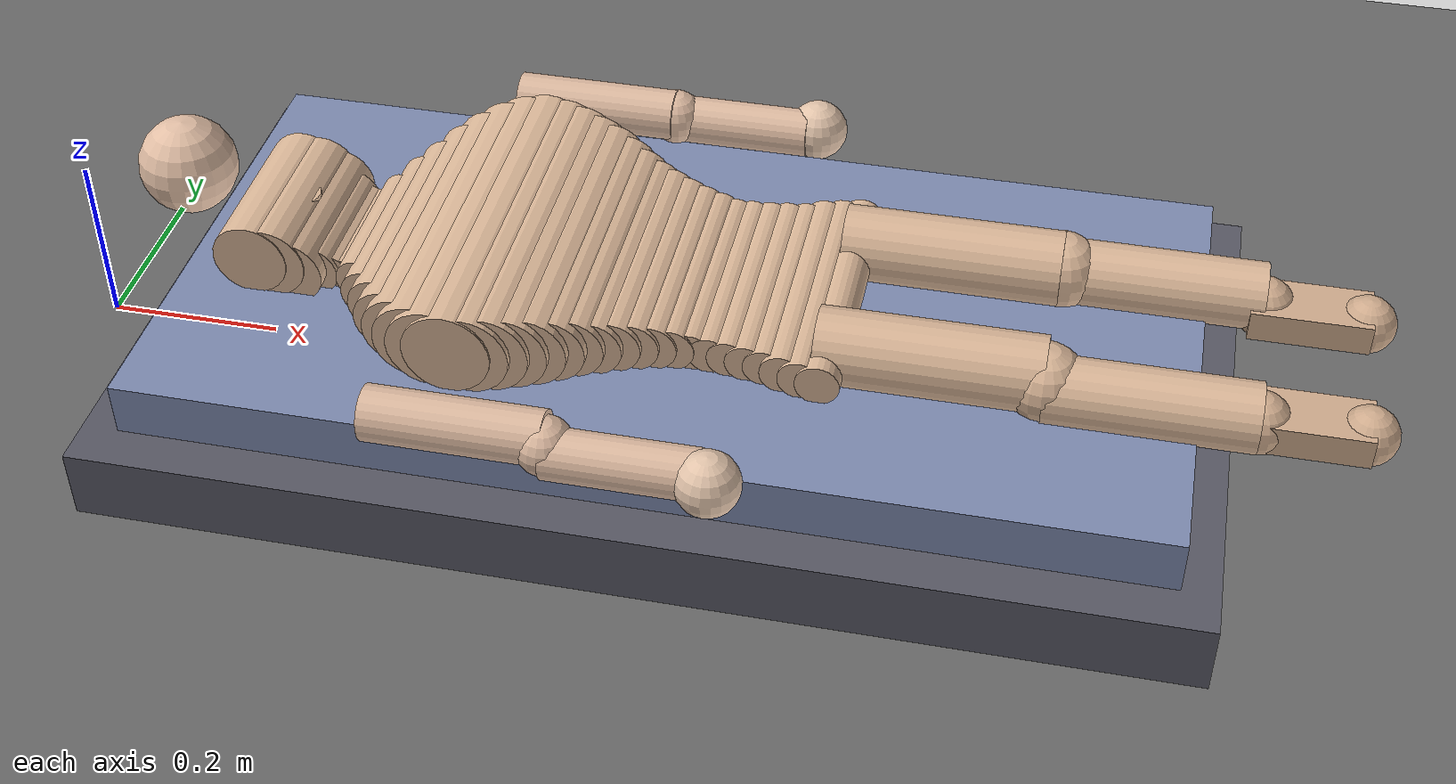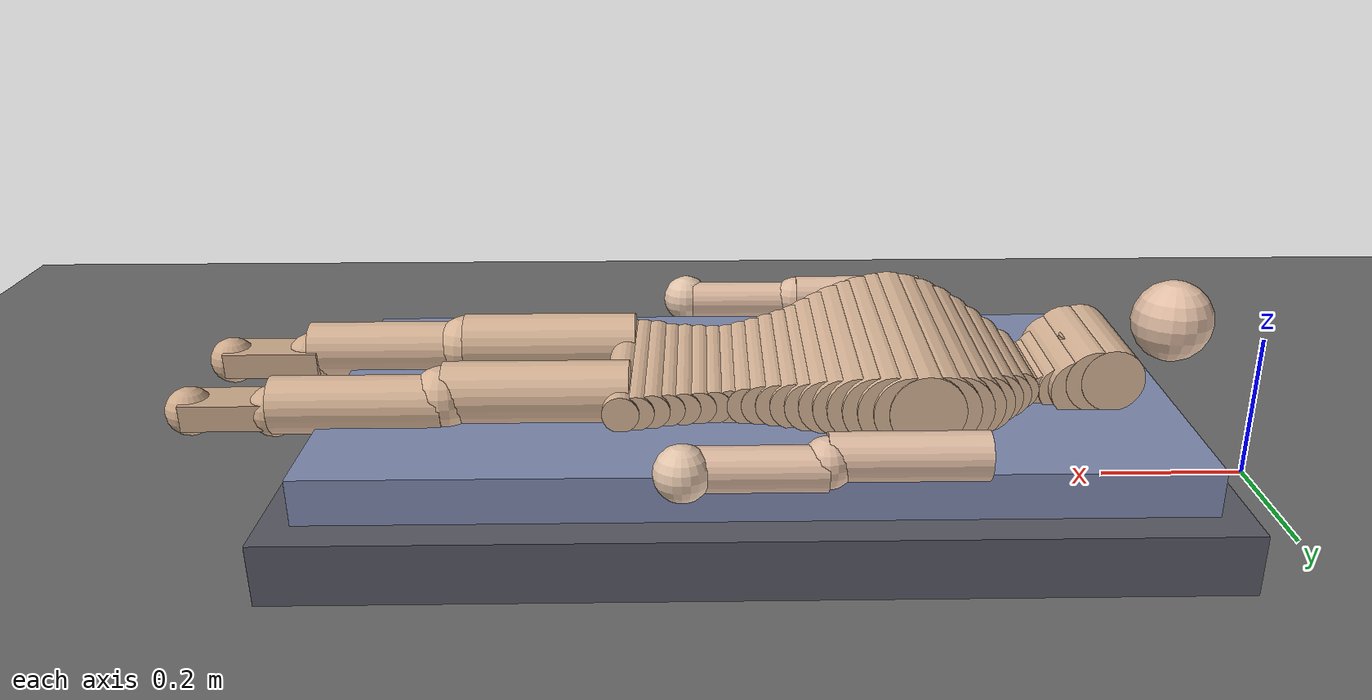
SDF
<?xml version="1.0" ?>
<sdf version="1.6">
  <world name="massage_world">
    <gravity>0 0 -9.81</gravity>

    <physics name="stable_ode" default="true" type="ode">
      <max_step_size>0.001</max_step_size>
      <real_time_factor>1.0</real_time_factor>
      <real_time_update_rate>1000</real_time_update_rate>
      <ode>
        <solver>
          <type>quick</type>
          <iters>80</iters>
          <sor>1.2</sor>
        </solver>
        <constraints>
          <cfm>0.00001</cfm>
          <erp>0.2</erp>
          <contact_max_correcting_vel>0.5</contact_max_correcting_vel>
          <contact_surface_layer>0.002</contact_surface_layer>
        </constraints>
      </ode>
    </physics>

    <gui fullscreen="1">
      <camera name="user_camera">
        <pose>0.70 -1.50 1.20 0 0.75 4.80</pose>
        <view_controller>orbit</view_controller>
      </camera>
    </gui>

    <!-- 地面 -->
    <model name="ground_plane">
      <static>true</static>
      <link name="link">
        <collision name="collision">
          <geometry>
            <plane><normal>0 0 1</normal><size>4 4</size></plane>
          </geometry>
        </collision>
        <visual name="visual">
          <geometry>
            <plane><normal>0 0 1</normal><size>4 4</size></plane>
          </geometry>
          <material>
            <ambient>0.42 0.42 0.42 1</ambient>
            <diffuse>0.42 0.42 0.42 1</diffuse>
          </material>
        </visual>
      </link>
    </model>

    <!-- 光照 -->
    <light name="sun" type="directional">
      <cast_shadows>true</cast_shadows>
      <pose>0 0 5 0 0 0</pose>
      <diffuse>0.8 0.8 0.8 1</diffuse>
      <specular>0.2 0.2 0.2 1</specular>
      <attenuation>
        <range>1000</range>
        <constant>0.9</constant>
        <linear>0.01</linear>
        <quadratic>0.001</quadratic>
      </attenuation>
      <direction>-0.5 0.1 -0.9</direction>
    </light>

    <!-- 按摩床 (center x=0.70, y=0) — 两个 Box: 床框 + 床垫 -->
    <model name="massage_bed">
      <static>true</static>
      <pose>0 0 0 0 0 0</pose>

      <link name="bed_frame">
        <collision name="frame_collision">
          <pose>0.70 0 0.04 0 0 0</pose>
          <geometry><box><size>1.20 0.66 0.08</size></box></geometry>
        </collision>
        <visual name="frame_visual">
          <pose>0.70 0 0.04 0 0 0</pose>
          <geometry><box><size>1.20 0.66 0.08</size></box></geometry>
          <material>
            <ambient>0.35 0.35 0.40 1</ambient>
            <diffuse>0.35 0.35 0.40 1</diffuse>
          </material>
        </visual>
      </link>

      <link name="mattress">
        <pose>0.70 0 0.11 0 0 0</pose>
        <collision name="mattress_collision">
          <geometry><box><size>1.12 0.56 0.06</size></box></geometry>
        </collision>
        <visual name="mattress_visual">
          <geometry><box><size>1.12 0.56 0.06</size></box></geometry>
          <material>
            <ambient>0.50 0.55 0.70 1</ambient>
            <diffuse>0.50 0.55 0.70 1</diffuse>
          </material>
        </visual>
      </link>
    </model>

    <!-- 人体模型 — Catmull-Rom 样条平滑背部曲面 (33根Y轴圆柱)    -->
    <!-- 间距2cm, 半径=thick*0.55 — 相邻圆柱重叠形成连续曲面       -->
    <!-- 所有四肢 z ≥ 0.18 (床垫顶0.14 + 4cm安全间距)              -->
    <!-- Z→Y: 绕X旋转90° → roll=1.5708 rad                        -->
    <model name="human_body">
      <static>true</static>

      <!-- ── 人体轮廓躯干 (12段Catmull-Rom→33采样, 2cm间距) ── -->
      <!-- 设计原则: 肩部明显隆起(z峰=0.187,r=0.048), 腰部明显收窄(L=0.246) -->
      <!-- z_center = z_surface - radius: 圆柱顶面≈体表按压点              -->
      <!-- length = 2*half_w: Y向体宽, 肩部最宽0.415m, 腰部最窄0.246m      -->
      <link name="back_00"><pose>0.230 0 0.180 1.5708 0 0</pose>
        <collision name="c"><geometry><cylinder><radius>0.042</radius><length>0.185</length></cylinder></geometry></collision>
        <visual name="v"><geometry><cylinder><radius>0.042</radius><length>0.185</length></cylinder></geometry>
          <material><ambient>0.86 0.72 0.60 1</ambient><diffuse>0.86 0.72 0.60 1</diffuse></material></visual>
      </link>
      <link name="back_01"><pose>0.250 0 0.178 1.5708 0 0</pose>
        <collision name="c"><geometry><cylinder><radius>0.042</radius><length>0.183</length></cylinder></geometry></collision>
        <visual name="v"><geometry><cylinder><radius>0.042</radius><length>0.183</length></cylinder></geometry>
          <material><ambient>0.86 0.72 0.60 1</ambient><diffuse>0.86 0.72 0.60 1</diffuse></material></visual>
      </link>
      <link name="back_02"><pose>0.270 0 0.167 1.5708 0 0</pose>
        <collision name="c"><geometry><cylinder><radius>0.040</radius><length>0.180</length></cylinder></geometry></collision>
        <visual name="v"><geometry><cylinder><radius>0.040</radius><length>0.180</length></cylinder></geometry>
          <material><ambient>0.86 0.72 0.60 1</ambient><diffuse>0.86 0.72 0.60 1</diffuse></material></visual>
      </link>
      <link name="back_03"><pose>0.290 0 0.160 1.5708 0 0</pose>
        <collision name="c"><geometry><cylinder><radius>0.032</radius><length>0.148</length></cylinder></geometry></collision>
        <visual name="v"><geometry><cylinder><radius>0.032</radius><length>0.148</length></cylinder></geometry>
          <material><ambient>0.86 0.72 0.60 1</ambient><diffuse>0.86 0.72 0.60 1</diffuse></material></visual>
      </link>
      <link name="back_04"><pose>0.310 0 0.153 1.5708 0 0</pose>
        <collision name="c"><geometry><cylinder><radius>0.026</radius><length>0.137</length></cylinder></geometry></collision>
        <visual name="v"><geometry><cylinder><radius>0.026</radius><length>0.137</length></cylinder></geometry>
          <material><ambient>0.86 0.72 0.60 1</ambient><diffuse>0.86 0.72 0.60 1</diffuse></material></visual>
      </link>
      <link name="back_05"><pose>0.330 0 0.152 1.5708 0 0</pose>
        <collision name="c"><geometry><cylinder><radius>0.024</radius><length>0.135</length></cylinder></geometry></collision>
        <visual name="v"><geometry><cylinder><radius>0.024</radius><length>0.135</length></cylinder></geometry>
          <material><ambient>0.86 0.72 0.60 1</ambient><diffuse>0.86 0.72 0.60 1</diffuse></material></visual>
      </link>
      <link name="back_06"><pose>0.350 0 0.163 1.5708 0 0</pose>
        <collision name="c"><geometry><cylinder><radius>0.026</radius><length>0.166</length></cylinder></geometry></collision>
        <visual name="v"><geometry><cylinder><radius>0.026</radius><length>0.166</length></cylinder></geometry>
          <material><ambient>0.86 0.72 0.60 1</ambient><diffuse>0.86 0.72 0.60 1</diffuse></material></visual>
      </link>
      <link name="back_07"><pose>0.370 0 0.168 1.5708 0 0</pose>
        <collision name="c"><geometry><cylinder><radius>0.030</radius><length>0.220</length></cylinder></geometry></collision>
        <visual name="v"><geometry><cylinder><radius>0.030</radius><length>0.220</length></cylinder></geometry>
          <material><ambient>0.86 0.72 0.60 1</ambient><diffuse>0.86 0.72 0.60 1</diffuse></material></visual>
      </link>
      <link name="back_08"><pose>0.390 0 0.173 1.5708 0 0</pose>
        <collision name="c"><geometry><cylinder><radius>0.034</radius><length>0.265</length></cylinder></geometry></collision>
        <visual name="v"><geometry><cylinder><radius>0.034</radius><length>0.265</length></cylinder></geometry>
          <material><ambient>0.86 0.72 0.60 1</ambient><diffuse>0.86 0.72 0.60 1</diffuse></material></visual>
      </link>
      <link name="back_09"><pose>0.410 0 0.177 1.5708 0 0</pose>
        <collision name="c"><geometry><cylinder><radius>0.038</radius><length>0.316</length></cylinder></geometry></collision>
        <visual name="v"><geometry><cylinder><radius>0.038</radius><length>0.316</length></cylinder></geometry>
          <material><ambient>0.86 0.72 0.60 1</ambient><diffuse>0.86 0.72 0.60 1</diffuse></material></visual>
      </link>
      <link name="back_10"><pose>0.430 0 0.181 1.5708 0 0</pose>
        <collision name="c"><geometry><cylinder><radius>0.042</radius><length>0.354</length></cylinder></geometry></collision>
        <visual name="v"><geometry><cylinder><radius>0.042</radius><length>0.354</length></cylinder></geometry>
          <material><ambient>0.86 0.72 0.60 1</ambient><diffuse>0.86 0.72 0.60 1</diffuse></material></visual>
      </link>
      <link name="back_11"><pose>0.450 0 0.184 1.5708 0 0</pose>
        <collision name="c"><geometry><cylinder><radius>0.045</radius><length>0.385</length></cylinder></geometry></collision>
        <visual name="v"><geometry><cylinder><radius>0.045</radius><length>0.385</length></cylinder></geometry>
          <material><ambient>0.86 0.72 0.60 1</ambient><diffuse>0.86 0.72 0.60 1</diffuse></material></visual>
      </link>
      <link name="back_12"><pose>0.470 0 0.186 1.5708 0 0</pose>
        <collision name="c"><geometry><cylinder><radius>0.047</radius><length>0.405</length></cylinder></geometry></collision>
        <visual name="v"><geometry><cylinder><radius>0.047</radius><length>0.405</length></cylinder></geometry>
          <material><ambient>0.86 0.72 0.60 1</ambient><diffuse>0.86 0.72 0.60 1</diffuse></material></visual>
      </link>
      <link name="back_13"><pose>0.490 0 0.187 1.5708 0 0</pose>
        <collision name="c"><geometry><cylinder><radius>0.048</radius><length>0.415</length></cylinder></geometry></collision>
        <visual name="v"><geometry><cylinder><radius>0.048</radius><length>0.415</length></cylinder></geometry>
          <material><ambient>0.86 0.72 0.60 1</ambient><diffuse>0.86 0.72 0.60 1</diffuse></material></visual>
      </link>
      <link name="back_14"><pose>0.510 0 0.186 1.5708 0 0</pose>
        <collision name="c"><geometry><cylinder><radius>0.047</radius><length>0.410</length></cylinder></geometry></collision>
        <visual name="v"><geometry><cylinder><radius>0.047</radius><length>0.410</length></cylinder></geometry>
          <material><ambient>0.86 0.72 0.60 1</ambient><diffuse>0.86 0.72 0.60 1</diffuse></material></visual>
      </link>
      <link name="back_15"><pose>0.530 0 0.185 1.5708 0 0</pose>
        <collision name="c"><geometry><cylinder><radius>0.046</radius><length>0.396</length></cylinder></geometry></collision>
        <visual name="v"><geometry><cylinder><radius>0.046</radius><length>0.396</length></cylinder></geometry>
          <material><ambient>0.86 0.72 0.60 1</ambient><diffuse>0.86 0.72 0.60 1</diffuse></material></visual>
      </link>
      <link name="back_16"><pose>0.550 0 0.183 1.5708 0 0</pose>
        <collision name="c"><geometry><cylinder><radius>0.044</radius><length>0.380</length></cylinder></geometry></collision>
        <visual name="v"><geometry><cylinder><radius>0.044</radius><length>0.380</length></cylinder></geometry>
          <material><ambient>0.86 0.72 0.60 1</ambient><diffuse>0.86 0.72 0.60 1</diffuse></material></visual>
      </link>
      <link name="back_17"><pose>0.570 0 0.181 1.5708 0 0</pose>
        <collision name="c"><geometry><cylinder><radius>0.042</radius><length>0.362</length></cylinder></geometry></collision>
        <visual name="v"><geometry><cylinder><radius>0.042</radius><length>0.362</length></cylinder></geometry>
          <material><ambient>0.86 0.72 0.60 1</ambient><diffuse>0.86 0.72 0.60 1</diffuse></material></visual>
      </link>
      <link name="back_18"><pose>0.590 0 0.178 1.5708 0 0</pose>
        <collision name="c"><geometry><cylinder><radius>0.039</radius><length>0.341</length></cylinder></geometry></collision>
        <visual name="v"><geometry><cylinder><radius>0.039</radius><length>0.341</length></cylinder></geometry>
          <material><ambient>0.86 0.72 0.60 1</ambient><diffuse>0.86 0.72 0.60 1</diffuse></material></visual>
      </link>
      <link name="back_19"><pose>0.610 0 0.175 1.5708 0 0</pose>
        <collision name="c"><geometry><cylinder><radius>0.036</radius><length>0.318</length></cylinder></geometry></collision>
        <visual name="v"><geometry><cylinder><radius>0.036</radius><length>0.318</length></cylinder></geometry>
          <material><ambient>0.86 0.72 0.60 1</ambient><diffuse>0.86 0.72 0.60 1</diffuse></material></visual>
      </link>
      <link name="back_20"><pose>0.630 0 0.171 1.5708 0 0</pose>
        <collision name="c"><geometry><cylinder><radius>0.033</radius><length>0.300</length></cylinder></geometry></collision>
        <visual name="v"><geometry><cylinder><radius>0.033</radius><length>0.300</length></cylinder></geometry>
          <material><ambient>0.86 0.72 0.60 1</ambient><diffuse>0.86 0.72 0.60 1</diffuse></material></visual>
      </link>
      <link name="back_21"><pose>0.650 0 0.169 1.5708 0 0</pose>
        <collision name="c"><geometry><cylinder><radius>0.031</radius><length>0.283</length></cylinder></geometry></collision>
        <visual name="v"><geometry><cylinder><radius>0.031</radius><length>0.283</length></cylinder></geometry>
          <material><ambient>0.86 0.72 0.60 1</ambient><diffuse>0.86 0.72 0.60 1</diffuse></material></visual>
      </link>
      <link name="back_22"><pose>0.670 0 0.167 1.5708 0 0</pose>
        <collision name="c"><geometry><cylinder><radius>0.029</radius><length>0.269</length></cylinder></geometry></collision>
        <visual name="v"><geometry><cylinder><radius>0.029</radius><length>0.269</length></cylinder></geometry>
          <material><ambient>0.86 0.72 0.60 1</ambient><diffuse>0.86 0.72 0.60 1</diffuse></material></visual>
      </link>
      <link name="back_23"><pose>0.690 0 0.165 1.5708 0 0</pose>
        <collision name="c"><geometry><cylinder><radius>0.027</radius><length>0.258</length></cylinder></geometry></collision>
        <visual name="v"><geometry><cylinder><radius>0.027</radius><length>0.258</length></cylinder></geometry>
          <material><ambient>0.86 0.72 0.60 1</ambient><diffuse>0.86 0.72 0.60 1</diffuse></material></visual>
      </link>
      <link name="back_24"><pose>0.710 0 0.163 1.5708 0 0</pose>
        <collision name="c"><geometry><cylinder><radius>0.025</radius><length>0.251</length></cylinder></geometry></collision>
        <visual name="v"><geometry><cylinder><radius>0.025</radius><length>0.251</length></cylinder></geometry>
          <material><ambient>0.86 0.72 0.60 1</ambient><diffuse>0.86 0.72 0.60 1</diffuse></material></visual>
      </link>
      <link name="back_25"><pose>0.730 0 0.161 1.5708 0 0</pose>
        <collision name="c"><geometry><cylinder><radius>0.023</radius><length>0.246</length></cylinder></geometry></collision>
        <visual name="v"><geometry><cylinder><radius>0.023</radius><length>0.246</length></cylinder></geometry>
          <material><ambient>0.86 0.72 0.60 1</ambient><diffuse>0.86 0.72 0.60 1</diffuse></material></visual>
      </link>
      <link name="back_26"><pose>0.750 0 0.161 1.5708 0 0</pose>
        <collision name="c"><geometry><cylinder><radius>0.022</radius><length>0.248</length></cylinder></geometry></collision>
        <visual name="v"><geometry><cylinder><radius>0.022</radius><length>0.248</length></cylinder></geometry>
          <material><ambient>0.86 0.72 0.60 1</ambient><diffuse>0.86 0.72 0.60 1</diffuse></material></visual>
      </link>
      <link name="back_27"><pose>0.770 0 0.161 1.5708 0 0</pose>
        <collision name="c"><geometry><cylinder><radius>0.022</radius><length>0.252</length></cylinder></geometry></collision>
        <visual name="v"><geometry><cylinder><radius>0.022</radius><length>0.252</length></cylinder></geometry>
          <material><ambient>0.86 0.72 0.60 1</ambient><diffuse>0.86 0.72 0.60 1</diffuse></material></visual>
      </link>
      <link name="back_28"><pose>0.790 0 0.161 1.5708 0 0</pose>
        <collision name="c"><geometry><cylinder><radius>0.022</radius><length>0.258</length></cylinder></geometry></collision>
        <visual name="v"><geometry><cylinder><radius>0.022</radius><length>0.258</length></cylinder></geometry>
          <material><ambient>0.86 0.72 0.60 1</ambient><diffuse>0.86 0.72 0.60 1</diffuse></material></visual>
      </link>
      <link name="back_29"><pose>0.810 0 0.161 1.5708 0 0</pose>
        <collision name="c"><geometry><cylinder><radius>0.022</radius><length>0.264</length></cylinder></geometry></collision>
        <visual name="v"><geometry><cylinder><radius>0.022</radius><length>0.264</length></cylinder></geometry>
          <material><ambient>0.86 0.72 0.60 1</ambient><diffuse>0.86 0.72 0.60 1</diffuse></material></visual>
      </link>
      <link name="back_30"><pose>0.830 0 0.162 1.5708 0 0</pose>
        <collision name="c"><geometry><cylinder><radius>0.023</radius><length>0.278</length></cylinder></geometry></collision>
        <visual name="v"><geometry><cylinder><radius>0.023</radius><length>0.278</length></cylinder></geometry>
          <material><ambient>0.86 0.72 0.60 1</ambient><diffuse>0.86 0.72 0.60 1</diffuse></material></visual>
      </link>
      <link name="back_31"><pose>0.850 0 0.162 1.5708 0 0</pose>
        <collision name="c"><geometry><cylinder><radius>0.023</radius><length>0.288</length></cylinder></geometry></collision>
        <visual name="v"><geometry><cylinder><radius>0.023</radius><length>0.288</length></cylinder></geometry>
          <material><ambient>0.86 0.72 0.60 1</ambient><diffuse>0.86 0.72 0.60 1</diffuse></material></visual>
      </link>
      <link name="back_32"><pose>0.870 0 0.162 1.5708 0 0</pose>
        <collision name="c"><geometry><cylinder><radius>0.024</radius><length>0.296</length></cylinder></geometry></collision>
        <visual name="v"><geometry><cylinder><radius>0.024</radius><length>0.296</length></cylinder></geometry>
          <material><ambient>0.86 0.72 0.60 1</ambient><diffuse>0.86 0.72 0.60 1</diffuse></material></visual>
      </link>

      <!-- ── 头部球体 (x=0.13, 枕骨区, 彻底让开 C7 按摩区 x≥0.30) ── -->
      <link name="head">
        <pose>0.13 0 0.23 0 0 0</pose>
        <collision name="c"><geometry><sphere><radius>0.055</radius></sphere></geometry></collision>
        <visual name="v"><geometry><sphere><radius>0.055</radius></sphere></geometry>
          <material><ambient>0.90 0.76 0.66 1</ambient><diffuse>0.90 0.76 0.66 1</diffuse></material></visual>
      </link>

      <!-- ── 颈部 (x=0.26, 枕颈交界, 细短圆柱) ── -->
      <link name="neck">
        <pose>0.26 0 0.195 0 0 0</pose>
        <collision name="c"><geometry><cylinder><radius>0.022</radius><length>0.030</length></cylinder></geometry></collision>
        <visual name="v"><geometry><cylinder><radius>0.022</radius><length>0.030</length></cylinder></geometry>
          <material><ambient>0.86 0.72 0.60 1</ambient><diffuse>0.86 0.72 0.60 1</diffuse></material></visual>
      </link>

      <!-- ── 双臂 — 贴体侧俯卧位，沿X轴(体长方向)水平 pitch=π/2 ── -->
      <!-- 上臂 y=±0.29: 肩区背部最宽 L=0.415 → 边缘 ±0.2075, 与上臂不重叠 -->
      <!-- 肩x≈0.43, 肘x≈0.62, 上臂中心x≈0.525, length=0.19 -->
      <link name="left_upper_arm">
        <pose>0.525 -0.29 0.17 0 1.5708 0</pose>
        <collision name="c"><geometry><cylinder><radius>0.030</radius><length>0.19</length></cylinder></geometry></collision>
        <visual name="v"><geometry><cylinder><radius>0.030</radius><length>0.19</length></cylinder></geometry>
          <material><ambient>0.88 0.74 0.64 1</ambient><diffuse>0.88 0.74 0.64 1</diffuse></material></visual>
      </link>
      <link name="left_elbow">
        <pose>0.62 -0.295 0.165 0 0 0</pose>
        <collision name="c"><geometry><sphere><radius>0.032</radius></sphere></geometry></collision>
        <visual name="v"><geometry><sphere><radius>0.032</radius></sphere></geometry>
          <material><ambient>0.88 0.74 0.64 1</ambient><diffuse>0.88 0.74 0.64 1</diffuse></material></visual>
      </link>
      <!-- 肘x≈0.62, 腕x≈0.78, 前臂中心x≈0.70, length=0.16 -->
      <link name="left_forearm">
        <pose>0.700 -0.30 0.16 0 1.5708 0</pose>
        <collision name="c"><geometry><cylinder><radius>0.028</radius><length>0.16</length></cylinder></geometry></collision>
        <visual name="v"><geometry><cylinder><radius>0.028</radius><length>0.16</length></cylinder></geometry>
          <material><ambient>0.88 0.74 0.64 1</ambient><diffuse>0.88 0.74 0.64 1</diffuse></material></visual>
      </link>
      <link name="left_wrist">
        <pose>0.78 -0.305 0.155 0 0 0</pose>
        <collision name="c"><geometry><sphere><radius>0.026</radius></sphere></geometry></collision>
        <visual name="v"><geometry><sphere><radius>0.026</radius></sphere></geometry>
          <material><ambient>0.90 0.78 0.68 1</ambient><diffuse>0.90 0.78 0.68 1</diffuse></material></visual>
      </link>
      <link name="left_hand">
        <pose>0.79 -0.31 0.16 0 0 0</pose>
        <collision name="c"><geometry><sphere><radius>0.035</radius></sphere></geometry></collision>
        <visual name="v"><geometry><sphere><radius>0.035</radius></sphere></geometry>
          <material><ambient>0.90 0.78 0.68 1</ambient><diffuse>0.90 0.78 0.68 1</diffuse></material></visual>
      </link>

      <link name="right_upper_arm">
        <pose>0.525 0.29 0.17 0 1.5708 0</pose>
        <collision name="c"><geometry><cylinder><radius>0.030</radius><length>0.19</length></cylinder></geometry></collision>
        <visual name="v"><geometry><cylinder><radius>0.030</radius><length>0.19</length></cylinder></geometry>
          <material><ambient>0.88 0.74 0.64 1</ambient><diffuse>0.88 0.74 0.64 1</diffuse></material></visual>
      </link>
      <link name="right_elbow">
        <pose>0.62 0.295 0.165 0 0 0</pose>
        <collision name="c"><geometry><sphere><radius>0.032</radius></sphere></geometry></collision>
        <visual name="v"><geometry><sphere><radius>0.032</radius></sphere></geometry>
          <material><ambient>0.88 0.74 0.64 1</ambient><diffuse>0.88 0.74 0.64 1</diffuse></material></visual>
      </link>
      <link name="right_forearm">
        <pose>0.700 0.30 0.16 0 1.5708 0</pose>
        <collision name="c"><geometry><cylinder><radius>0.028</radius><length>0.16</length></cylinder></geometry></collision>
        <visual name="v"><geometry><cylinder><radius>0.028</radius><length>0.16</length></cylinder></geometry>
          <material><ambient>0.88 0.74 0.64 1</ambient><diffuse>0.88 0.74 0.64 1</diffuse></material></visual>
      </link>
      <link name="right_wrist">
        <pose>0.78 0.305 0.155 0 0 0</pose>
        <collision name="c"><geometry><sphere><radius>0.026</radius></sphere></geometry></collision>
        <visual name="v"><geometry><sphere><radius>0.026</radius></sphere></geometry>
          <material><ambient>0.90 0.78 0.68 1</ambient><diffuse>0.90 0.78 0.68 1</diffuse></material></visual>
      </link>
      <link name="right_hand">
        <pose>0.79 0.31 0.16 0 0 0</pose>
        <collision name="c"><geometry><sphere><radius>0.035</radius></sphere></geometry></collision>
        <visual name="v"><geometry><sphere><radius>0.035</radius></sphere></geometry>
          <material><ambient>0.90 0.78 0.68 1</ambient><diffuse>0.90 0.78 0.68 1</diffuse></material></visual>
      </link>

      <!-- ── 双腿 — 沿X轴水平躺平 pitch=π/2 ── -->
      <!-- 髋x≈0.86, 膝x≈1.10, 大腿中心x≈0.98, length=0.24 -->
      <link name="left_thigh">
        <pose>0.98 -0.09 0.17 0 1.5708 0</pose>
        <collision name="c"><geometry><cylinder><radius>0.042</radius><length>0.24</length></cylinder></geometry></collision>
        <visual name="v"><geometry><cylinder><radius>0.042</radius><length>0.24</length></cylinder></geometry>
          <material><ambient>0.86 0.72 0.60 1</ambient><diffuse>0.86 0.72 0.60 1</diffuse></material></visual>
      </link>
      <link name="left_knee">
        <pose>1.10 -0.095 0.165 0 0 0</pose>
        <collision name="c"><geometry><sphere><radius>0.043</radius></sphere></geometry></collision>
        <visual name="v"><geometry><sphere><radius>0.043</radius></sphere></geometry>
          <material><ambient>0.86 0.72 0.60 1</ambient><diffuse>0.86 0.72 0.60 1</diffuse></material></visual>
      </link>
      <!-- 膝x≈1.10, 踝x≈1.32, 小腿中心x≈1.21, length=0.22 -->
      <link name="left_calf">
        <pose>1.21 -0.10 0.16 0 1.5708 0</pose>
        <collision name="c"><geometry><cylinder><radius>0.038</radius><length>0.22</length></cylinder></geometry></collision>
        <visual name="v"><geometry><cylinder><radius>0.038</radius><length>0.22</length></cylinder></geometry>
          <material><ambient>0.86 0.72 0.60 1</ambient><diffuse>0.86 0.72 0.60 1</diffuse></material></visual>
      </link>
      <link name="left_ankle">
        <pose>1.32 -0.095 0.150 0 0 0</pose>
        <collision name="c"><geometry><sphere><radius>0.034</radius></sphere></geometry></collision>
        <visual name="v"><geometry><sphere><radius>0.034</radius></sphere></geometry>
          <material><ambient>0.82 0.68 0.56 1</ambient><diffuse>0.82 0.68 0.56 1</diffuse></material></visual>
      </link>
      <link name="left_foot">
        <pose>1.37 -0.09 0.150 0 0 0</pose>
        <collision name="c"><geometry><box><size>0.13 0.065 0.035</size></box></geometry></collision>
        <visual name="v"><geometry><box><size>0.13 0.065 0.035</size></box></geometry>
          <material><ambient>0.82 0.68 0.56 1</ambient><diffuse>0.82 0.68 0.56 1</diffuse></material></visual>
      </link>
      <link name="left_toe">
        <pose>1.43 -0.09 0.148 0 0 0</pose>
        <collision name="c"><geometry><sphere><radius>0.032</radius></sphere></geometry></collision>
        <visual name="v"><geometry><sphere><radius>0.032</radius></sphere></geometry>
          <material><ambient>0.82 0.68 0.56 1</ambient><diffuse>0.82 0.68 0.56 1</diffuse></material></visual>
      </link>

      <link name="right_thigh">
        <pose>0.98 0.09 0.17 0 1.5708 0</pose>
        <collision name="c"><geometry><cylinder><radius>0.042</radius><length>0.24</length></cylinder></geometry></collision>
        <visual name="v"><geometry><cylinder><radius>0.042</radius><length>0.24</length></cylinder></geometry>
          <material><ambient>0.86 0.72 0.60 1</ambient><diffuse>0.86 0.72 0.60 1</diffuse></material></visual>
      </link>
      <link name="right_knee">
        <pose>1.10 0.095 0.165 0 0 0</pose>
        <collision name="c"><geometry><sphere><radius>0.043</radius></sphere></geometry></collision>
        <visual name="v"><geometry><sphere><radius>0.043</radius></sphere></geometry>
          <material><ambient>0.86 0.72 0.60 1</ambient><diffuse>0.86 0.72 0.60 1</diffuse></material></visual>
      </link>
      <link name="right_calf">
        <pose>1.21 0.10 0.16 0 1.5708 0</pose>
        <collision name="c"><geometry><cylinder><radius>0.038</radius><length>0.22</length></cylinder></geometry></collision>
        <visual name="v"><geometry><cylinder><radius>0.038</radius><length>0.22</length></cylinder></geometry>
          <material><ambient>0.86 0.72 0.60 1</ambient><diffuse>0.86 0.72 0.60 1</diffuse></material></visual>
      </link>
      <link name="right_ankle">
        <pose>1.32 0.095 0.150 0 0 0</pose>
        <collision name="c"><geometry><sphere><radius>0.034</radius></sphere></geometry></collision>
        <visual name="v"><geometry><sphere><radius>0.034</radius></sphere></geometry>
          <material><ambient>0.82 0.68 0.56 1</ambient><diffuse>0.82 0.68 0.56 1</diffuse></material></visual>
      </link>
      <link name="right_foot">
        <pose>1.37 0.09 0.150 0 0 0</pose>
        <collision name="c"><geometry><box><size>0.13 0.065 0.035</size></box></geometry></collision>
        <visual name="v"><geometry><box><size>0.13 0.065 0.035</size></box></geometry>
          <material><ambient>0.82 0.68 0.56 1</ambient><diffuse>0.82 0.68 0.56 1</diffuse></material></visual>
      </link>
      <link name="right_toe">
        <pose>1.43 0.09 0.148 0 0 0</pose>
        <collision name="c"><geometry><sphere><radius>0.032</radius></sphere></geometry></collision>
        <visual name="v"><geometry><sphere><radius>0.032</radius></sphere></geometry>
          <material><ambient>0.82 0.68 0.56 1</ambient><diffuse>0.82 0.68 0.56 1</diffuse></material></visual>
      </link>
    </model>

    <!-- Gazebo ROS 接口 -->
    <plugin name="gazebo_ros_state" filename="libgazebo_ros_state.so">
      <ros><namespace>/gazebo</namespace></ros>
      <update_rate>50.0</update_rate>
    </plugin>

  </world>
</sdf>
